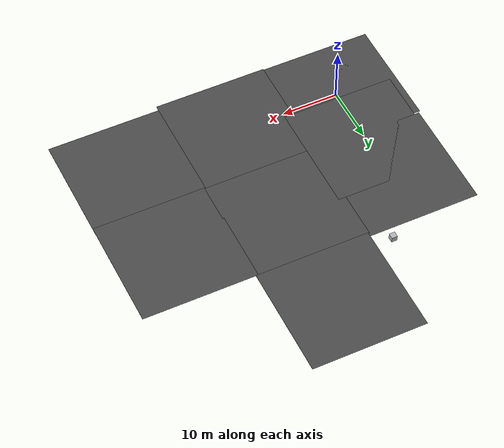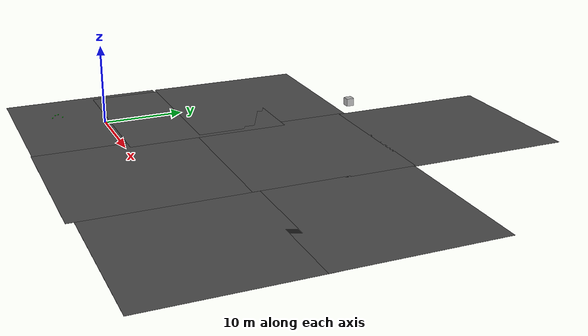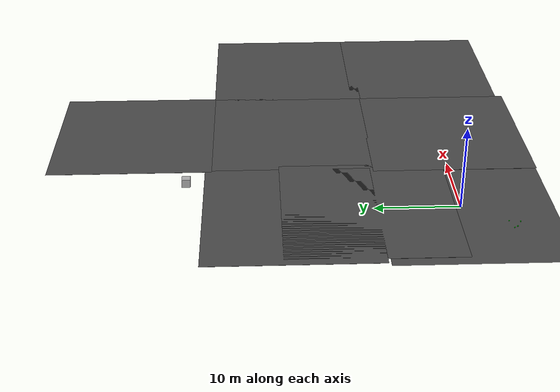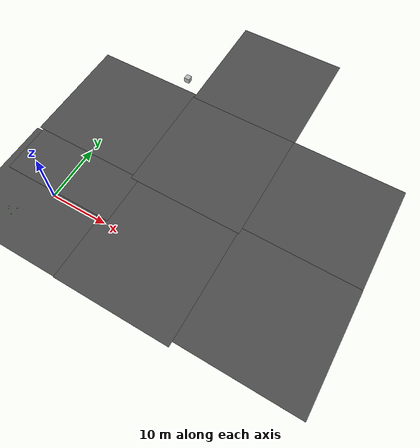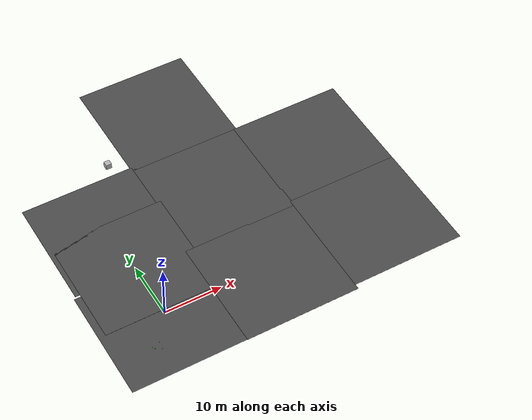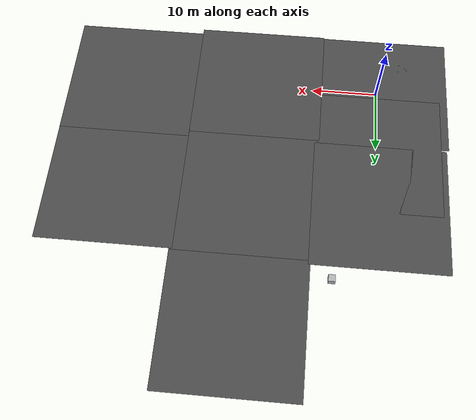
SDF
<sdf version="1.6">
 <world name="default">
  <model name="labrob_ground">
   <static>1</static>
   <link name="link">
    <collision name="collision">
     <geometry><plane><normal>0 0 1</normal><size>20 20</size></plane></geometry>
     <surface><friction><ode><mu>100</mu><mu2>50</mu2></ode></friction></surface>
    </collision>
    <visual name="visual">
     <cast_shadows>0</cast_shadows>
     <geometry><plane><normal>0 0 1</normal><size>20 20</size></plane></geometry>
     <material>
      <script>
       <uri>model://labrob_ground/materials/scripts/</uri>
       <uri>model://labrob_ground/materials/textures/</uri>
       <name>Labrob/AsphaltGround</name>
      </script>
     </material>
    </visual>
   </link>
   <pose>-1.13682 -0.729135 0 0 -0 0</pose>
  </model>
  <model name="labrob_ground_0">
   <static>1</static>
   <link name="link">
    <collision name="collision">
     <geometry><plane><normal>0 0 1</normal><size>20 20</size></plane></geometry>
     <surface><friction><ode><mu>100</mu><mu2>50</mu2></ode></friction></surface>
    </collision>
    <visual name="visual">
     <cast_shadows>0</cast_shadows>
     <geometry><plane><normal>0 0 1</normal><size>20 20</size></plane></geometry>
     <material>
      <script>
       <uri>model://labrob_ground/materials/scripts/</uri>
       <uri>model://labrob_ground/materials/textures/</uri>
       <name>Labrob/AsphaltGround</name>
      </script>
     </material>
    </visual>
   </link>
   <pose>18.5231 -0.837953 0 0 -0 0</pose>
  </model>
  <model name="labrob_ground_6">
   <static>1</static>
   <link name="link">
    <collision name="collision">
     <geometry><plane><normal>0 0 1</normal><size>20 20</size></plane></geometry>
     <surface><friction><ode><mu>100</mu><mu2>50</mu2></ode></friction></surface>
    </collision>
    <visual name="visual">
     <cast_shadows>0</cast_shadows>
     <geometry><plane><normal>0 0 1</normal><size>20 20</size></plane></geometry>
     <material>
      <script>
       <uri>model://labrob_ground/materials/scripts/</uri>
       <uri>model://labrob_ground/materials/textures/</uri>
       <name>Labrob/AsphaltGround</name>
      </script>
     </material>
    </visual>
   </link>
   <pose>-0.764551 19.5561 0 0 -0 0</pose>
  </model>
  <model name="labrob_ground_7">
   <static>1</static>
   <link name="link">
    <collision name="collision">
     <geometry><plane><normal>0 0 1</normal><size>20 20</size></plane></geometry>
     <surface><friction><ode><mu>100</mu><mu2>50</mu2></ode></friction></surface>
    </collision>
    <visual name="visual">
     <cast_shadows>0</cast_shadows>
     <geometry><plane><normal>0 0 1</normal><size>20 20</size></plane></geometry>
     <material>
      <script>
       <uri>model://labrob_ground/materials/scripts/</uri>
       <uri>model://labrob_ground/materials/textures/</uri>
       <name>Labrob/AsphaltGround</name>
      </script>
     </material>
    </visual>
   </link>
   <pose>18.7361 18.9694 0 0 -0 0</pose>
  </model>
  <model name="labrob_ground_10">
   <static>1</static>
   <link name="link">
    <collision name="collision">
     <geometry><plane><normal>0 0 1</normal><size>20 20</size></plane></geometry>
     <surface><friction><ode><mu>100</mu><mu2>50</mu2></ode></friction></surface>
    </collision>
    <visual name="visual">
     <cast_shadows>0</cast_shadows>
     <geometry><plane><normal>0 0 1</normal><size>20 20</size></plane></geometry>
     <material>
      <script>
       <uri>model://labrob_ground/materials/scripts/</uri>
       <uri>model://labrob_ground/materials/textures/</uri>
       <name>Labrob/AsphaltGround</name>
      </script>
     </material>
    </visual>
   </link>
   <pose>18.9313 38.763 0 0 -0 0</pose>
  </model>
  <model name="labrob_ground_11">
   <static>1</static>
   <link name="link">
    <collision name="collision">
     <geometry><plane><normal>0 0 1</normal><size>20 20</size></plane></geometry>
     <surface><friction><ode><mu>100</mu><mu2>50</mu2></ode></friction></surface>
    </collision>
    <visual name="visual">
     <cast_shadows>0</cast_shadows>
     <geometry><plane><normal>0 0 1</normal><size>20 20</size></plane></geometry>
     <material>
      <script>
       <uri>model://labrob_ground/materials/scripts/</uri>
       <uri>model://labrob_ground/materials/textures/</uri>
       <name>Labrob/AsphaltGround</name>
      </script>
     </material>
    </visual>
   </link>
   <pose>38.4891 18.8271 0 0 -0 0</pose>
  </model>
  <model name="labrob_ground_12">
   <static>1</static>
   <link name="link">
    <collision name="collision">
     <geometry><plane><normal>0 0 1</normal><size>20 20</size></plane></geometry>
     <surface><friction><ode><mu>100</mu><mu2>50</mu2></ode></friction></surface>
    </collision>
    <visual name="visual">
     <cast_shadows>0</cast_shadows>
     <geometry><plane><normal>0 0 1</normal><size>20 20</size></plane></geometry>
     <material>
      <script>
       <uri>model://labrob_ground/materials/scripts/</uri>
       <uri>model://labrob_ground/materials/textures/</uri>
       <name>Labrob/AsphaltGround</name>
      </script>
     </material>
    </visual>
   </link>
   <pose>38.5118 0.043136 0 0 -0 0</pose>
  </model>
  <model name="labrob_ground_19">
   <static>1</static>
   <link name="link">
    <collision name="collision">
     <geometry><plane><normal>0 0 1</normal><size>20 20</size></plane></geometry>
     <surface><friction><ode><mu>100</mu><mu2>50</mu2></ode></friction></surface>
    </collision>
    <visual name="visual">
     <cast_shadows>0</cast_shadows>
     <geometry><plane><normal>0 0 1</normal><size>20 20</size></plane></geometry>
     <material>
      <script>
       <uri>model://labrob_ground/materials/scripts/</uri>
       <uri>model://labrob_ground/materials/textures/</uri>
       <name>Labrob/AsphaltGround</name>
      </script>
     </material>
    </visual>
   </link>
   <pose>0.037941 10.6125 0 0 -0 0</pose>
  </model>
  <model name="sphere_green">
   <static>1</static>
   <link name="chassis">
    <pose>0 0 0.25 0 -0 0</pose>
    <collision name="collision"><geometry><sphere><radius>0.07</radius></sphere></geometry></collision>
    <visual name="visual">
     <geometry><sphere><radius>0.07</radius></sphere></geometry>
     <material>
      <ambient>0 1 0 1</ambient>
      <diffuse>0 1 0 1</diffuse>
      <specular>0.1 0.1 0.1 1</specular>
      <emissive>0 0 0 0</emissive>
     </material>
    </visual>
   </link>
   <pose>-3.47337 -4.76181 0 0 -0 0</pose>
  </model>
  <model name="sphere_green_0">
   <static>1</static>
   <link name="chassis">
    <pose>0 0 0.25 0 -0 0</pose>
    <collision name="collision"><geometry><sphere><radius>0.07</radius></sphere></geometry></collision>
    <visual name="visual">
     <geometry><sphere><radius>0.07</radius></sphere></geometry>
     <material>
      <ambient>0 1 0 1</ambient>
      <diffuse>0 1 0 1</diffuse>
      <specular>0.1 0.1 0.1 1</specular>
      <emissive>0 0 0 0</emissive>
     </material>
    </visual>
   </link>
   <pose>-4.82291 -5.08635 0 0 -0 0</pose>
  </model>
  <model name="sphere_green_17">
   <static>1</static>
   <link name="chassis">
    <pose>0 0 0.25 0 -0 0</pose>
    <collision name="collision"><geometry><sphere><radius>0.07</radius></sphere></geometry></collision>
    <visual name="visual">
     <geometry><sphere><radius>0.07</radius></sphere></geometry>
     <material>
      <ambient>0 1 0 1</ambient>
      <diffuse>0 1 0 1</diffuse>
      <specular>0.1 0.1 0.1 1</specular>
      <emissive>0 0 0 0</emissive>
     </material>
    </visual>
   </link>
   <pose>-4.57827 -5.47568 0 0 -0 0</pose>
  </model>
  <model name="sphere_green_18">
   <static>1</static>
   <link name="chassis">
    <pose>0 0 0.25 0 -0 0</pose>
    <collision name="collision"><geometry><sphere><radius>0.07</radius></sphere></geometry></collision>
    <visual name="visual">
     <geometry><sphere><radius>0.07</radius></sphere></geometry>
     <material>
      <ambient>0 1 0 1</ambient>
      <diffuse>0 1 0 1</diffuse>
      <specular>0.1 0.1 0.1 1</specular>
      <emissive>0 0 0 0</emissive>
     </material>
    </visual>
   </link>
   <pose>-3.63696 -6.0133 0 0 -0 0</pose>
  </model>
  <model name="box_1">
   <pose>5.92949 31.654 0.499997 -0 2e-06 -0.000531</pose>
   <link name="link">
    <collision name="collision"><geometry><box><size>1 1 1</size></box></geometry></collision>
    <visual name="visual"><geometry><box><size>1 1 1</size></box></geometry></visual>
    <inertial>
     <inertia><ixx>1</ixx><ixy>0</ixy><ixz>0</ixz><iyy>1</iyy><iyz>0</iyz><izz>1</izz></inertia>
     <mass>1</mass>
    </inertial>
   </link>
   <plugin name="drone_plugin" filename="libdrone_plugin.so"/>
  </model>
 </world>
</sdf>
